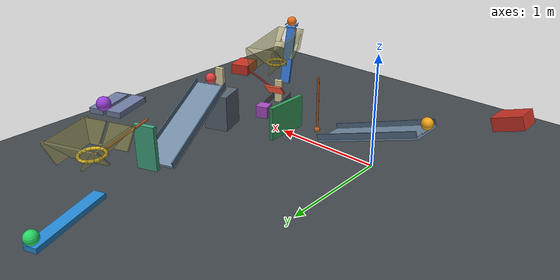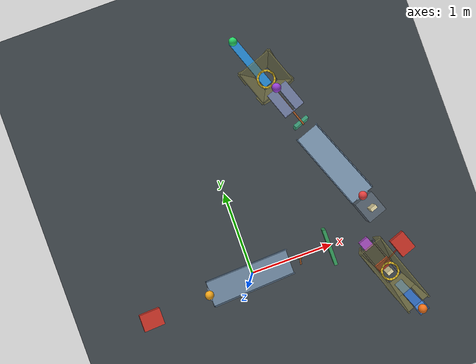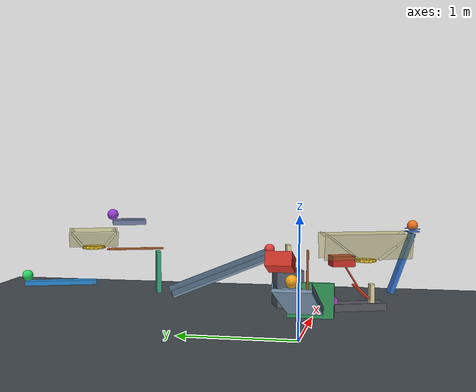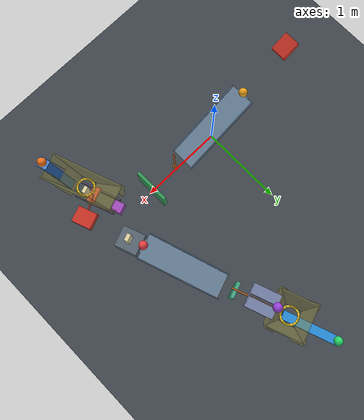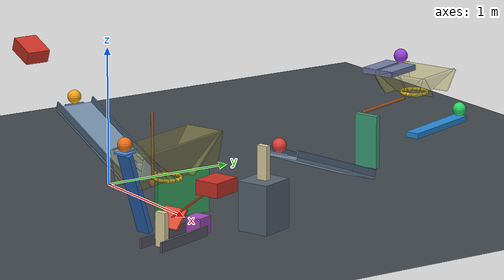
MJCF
<mujoco model="spring_started_chain">
  <compiler angle="degree" autolimits="true" inertiafromgeom="true"/>
  <option timestep="0.002" gravity="0 0 -9.81" integrator="implicitfast" solver="Newton" iterations="100" cone="elliptic" impratio="3" o_solref="0.006 0.6901" o_solimp="0.95 0.99 0.001" o_friction="0.68 0.68 0.005 0.002 0.002">
    <flag override="enable"/>
  </option>
  <size njmax="3000" nconmax="1000"/>
  <visual>
    <global azimuth="135" elevation="-25"/>
    <map znear="0.01" zfar="30"/>
  </visual>

  <!-- This revision addresses door1's collision with the block guide; it has not been rerun. -->
  <!-- Block guides now begin 0.02 m forward of block1's initial center, outside the door's swept volume. -->
  <!-- Block1 and the downstream assembly move together by 0.006 m toward the incoming impact direction. -->
  <!-- All bodies start with zero generalized velocity. -->
  <!-- Powered displacement assistance supplements cart1's spring; these are scene-internal actuators. -->
  <!-- Contact damping ratio 0.6901 approximates restitution 0.05. -->
  <!-- Non-floor contacts use condim=3; floor contacts add rolling resistance for settling. -->

  <worldbody>
    <light name="key_light" pos="-2 -3 5" dir="0.3 0.4 -1" diffuse="0.8 0.8 0.8"/>
    <light name="fill_light" pos="3 3 4" dir="-0.3 -0.3 -1" diffuse="0.5 0.5 0.5"/>
    <camera name="overview" pos="5 -6 4.5" xyaxes="0.768 0.640 0 -0.288 0.346 0.893"/>
    <geom name="floor" type="plane" pos="0 0 0" size="5 5 0.1" condim="6" friction="0.68 0.005 0.002" rgba="0.25 0.28 0.30 1"/>

    <!-- Compression is springref minus initial q: 0.20 m. -->
    <!-- The cart front reaches the stationary ball after 0.50 m of axial travel. -->
    <body name="cart1" pos="-1.090043 0 0.775754" quat="0.984807753 0 0.173648178 0">
      <joint name="cart1_slide" type="slide" axis="1 0 0" range="0 0.515" damping="0.20" stiffness="18" springref="0.20" solreflimit="0.006 1" solimplimit="0.99 0.999 0.001"/>
      <geom name="cart1_box" type="box" size="0.11 0.09 0.05" mass="0.50" condim="3" friction="0.68 0.005 0.002" rgba="0.80 0.20 0.15 1"/>
    </body>

    <body name="ball1" pos="-0.469846 0 0.550020">
      <freejoint name="ball1_free"/>
      <geom name="ball1_sphere" type="sphere" size="0.05" mass="0.20" condim="3" friction="0.68 0.005 0.002" rgba="0.95 0.65 0.10 1"/>
    </body>

    <!-- Ramp surface: 1.00 by 0.30 m, 20 degrees, low end at z=0.15. -->
    <!-- The short starting ledge ends 3 mm downstream of the initial ball center. -->
    <body name="ramp1" pos="0 0 0.321010" quat="0.984807753 0 0.173648178 0">
      <geom name="ramp1_surface" type="box" pos="0 0 -0.0125" size="0.50 0.15 0.0125" condim="3" friction="0.68 0.005 0.002" rgba="0.45 0.55 0.65 1"/>
      <geom name="ramp1_start_pad" type="box" pos="-0.503845 0 0.001793" quat="0.984807753 0 -0.173648178 0" size="0.006 0.075 0.005" condim="3" friction="0.68 0.005 0.002" rgba="0.55 0.65 0.75 1"/>
      <geom name="ramp1_rail_left" type="box" pos="0 0.145 0.02" size="0.50 0.005 0.025" condim="3" friction="0.68 0.005 0.002" rgba="0.35 0.45 0.55 1"/>
      <geom name="ramp1_rail_right" type="box" pos="0 -0.145 0.02" size="0.50 0.005 0.025" condim="3" friction="0.68 0.005 0.002" rgba="0.35 0.45 0.55 1"/>
    </body>

    <body name="pendulum1" pos="0.594846 0 0.65">
      <joint name="pendulum1_hinge" type="hinge" axis="0 -1 0" range="0 40" damping="0.04" solreflimit="0.006 1" solimplimit="0.99 0.999 0.001"/>
      <geom name="pendulum1_rod" type="capsule" fromto="0 0 0 0 0 -0.50" size="0.01" mass="0.32" condim="3" friction="0.68 0.005 0.002" rgba="0.65 0.35 0.15 1"/>
      <geom name="pendulum1_bob" type="sphere" pos="0 0 -0.50" size="0.027" mass="0.03" condim="3" friction="0.68 0.005 0.002" rgba="0.75 0.40 0.15 1"/>
    </body>

    <!-- The panel has 2 mm floor clearance. -->
    <body name="door1" pos="0.961240 -0.20 0.162">
      <joint name="door1_hinge" type="hinge" axis="0 0 -1" range="0 70" damping="0.04" solreflimit="0.006 1" solimplimit="0.99 0.999 0.001"/>
      <geom name="door1_panel" type="box" pos="0 0.21 0" size="0.02 0.21 0.16" mass="0.45" condim="3" friction="0.68 0.005 0.002" rgba="0.20 0.60 0.35 1"/>
    </body>

    <body name="block1" pos="1.381563 -0.126829 0.06" quat="0.819152044 0 0 -0.573576436">
      <freejoint name="block1_free"/>
      <geom name="block1_cube" type="box" size="0.06 0.06 0.06" mass="0.35" condim="3" friction="0.68 0.005 0.002" rgba="0.65 0.30 0.75 1"/>
    </body>

    <!-- Rail axial extent is now [0.02, 0.52], instead of [-0.08, 0.52]. -->
    <body name="block1_guide" pos="1.381563 -0.126829 0" quat="0.819152044 0 0 -0.573576436">
      <geom name="block1_guide_left" type="box" pos="0.27 0.086 0.035" size="0.25 0.008 0.035" condim="3" friction="0.68 0.005 0.002" rgba="0.35 0.35 0.40 1"/>
      <geom name="block1_guide_right" type="box" pos="0.27 -0.086 0.035" size="0.25 0.008 0.035" condim="3" friction="0.68 0.005 0.002" rgba="0.35 0.35 0.40 1"/>
    </body>

    <!-- Initial block-to-domino face clearance remains 0.32 m. -->
    <body name="domino1" pos="1.518371 -0.502706 0.12" quat="0.819152044 0 0 -0.573576436">
      <freejoint name="domino1_free"/>
      <geom name="domino1_box" type="box" size="0.02 0.04 0.12" mass="0.25" condim="3" friction="0.68 0.005 0.002" rgba="0.90 0.85 0.65 1"/>
    </body>

    <!-- Lever1's left end is 0.18 m beyond domino1. Beam and cup together weigh 0.50 kg. -->
    <body name="lever1" pos="1.615028 -0.768268 0.431908" quat="0.671010072 -0.328989928 -0.469846310 -0.469846310">
      <joint name="lever1_hinge" type="hinge" axis="0 -1 0" range="0 45" damping="0.04" solreflimit="0.006 1" solimplimit="0.99 0.999 0.001"/>
      <geom name="lever1_beam" type="box" size="0.30 0.05 0.02" mass="0.479" condim="3" friction="0.68 0.005 0.002" rgba="0.20 0.45 0.80 1"/>
      <geom name="lever1_cup_floor" type="box" pos="0.314095 0 0.005130" quat="0.819152044 0 0.573576436 0" size="0.055 0.05 0.005" mass="0.020" condim="3" friction="0.68 0.005 0.002" rgba="0.30 0.55 0.90 1"/>
      <geom name="lever1_cup_rail_left" type="capsule" fromto="0.320487 0.055 0.060666 0.354689 0.055 -0.033304" size="0.005" mass="0.0005" condim="3" friction="0.68 0.005 0.002" rgba="0.30 0.55 0.90 1"/>
      <geom name="lever1_cup_rail_right" type="capsule" fromto="0.320487 -0.055 0.060666 0.354689 -0.055 -0.033304" size="0.005" mass="0.0005" condim="3" friction="0.68 0.005 0.002" rgba="0.30 0.55 0.90 1"/>
    </body>

    <body name="ball2" pos="1.650121 -0.864686 0.783816">
      <freejoint name="ball2_free"/>
      <geom name="ball2_sphere" type="sphere" size="0.05" mass="0.20" condim="3" friction="0.68 0.005 0.002" rgba="0.95 0.45 0.10 1"/>
    </body>

    <!-- Horizontal ring, 0.16 m inscribed clear diameter, 0.32 m below ball2's initial center. -->
    <body name="ring1" pos="1.496212 -0.441825 0.463816" quat="0.573576436 0 0 0.819152044">
      <geom name="ring1_segment_00" type="capsule" fromto="0.093802 0 0 0.086664 0.035897 0" size="0.012" condim="3" friction="0.68 0.005 0.002" rgba="0.90 0.75 0.15 1"/>
      <geom name="ring1_segment_01" type="capsule" fromto="0.086664 0.035897 0 0.066330 0.066330 0" size="0.012" condim="3" friction="0.68 0.005 0.002" rgba="0.90 0.75 0.15 1"/>
      <geom name="ring1_segment_02" type="capsule" fromto="0.066330 0.066330 0 0.035897 0.086664 0" size="0.012" condim="3" friction="0.68 0.005 0.002" rgba="0.90 0.75 0.15 1"/>
      <geom name="ring1_segment_03" type="capsule" fromto="0.035897 0.086664 0 0 0.093802 0" size="0.012" condim="3" friction="0.68 0.005 0.002" rgba="0.90 0.75 0.15 1"/>
      <geom name="ring1_segment_04" type="capsule" fromto="0 0.093802 0 -0.035897 0.086664 0" size="0.012" condim="3" friction="0.68 0.005 0.002" rgba="0.90 0.75 0.15 1"/>
      <geom name="ring1_segment_05" type="capsule" fromto="-0.035897 0.086664 0 -0.066330 0.066330 0" size="0.012" condim="3" friction="0.68 0.005 0.002" rgba="0.90 0.75 0.15 1"/>
      <geom name="ring1_segment_06" type="capsule" fromto="-0.066330 0.066330 0 -0.086664 0.035897 0" size="0.012" condim="3" friction="0.68 0.005 0.002" rgba="0.90 0.75 0.15 1"/>
      <geom name="ring1_segment_07" type="capsule" fromto="-0.086664 0.035897 0 -0.093802 0 0" size="0.012" condim="3" friction="0.68 0.005 0.002" rgba="0.90 0.75 0.15 1"/>
      <geom name="ring1_segment_08" type="capsule" fromto="-0.093802 0 0 -0.086664 -0.035897 0" size="0.012" condim="3" friction="0.68 0.005 0.002" rgba="0.90 0.75 0.15 1"/>
      <geom name="ring1_segment_09" type="capsule" fromto="-0.086664 -0.035897 0 -0.066330 -0.066330 0" size="0.012" condim="3" friction="0.68 0.005 0.002" rgba="0.90 0.75 0.15 1"/>
      <geom name="ring1_segment_10" type="capsule" fromto="-0.066330 -0.066330 0 -0.035897 -0.086664 0" size="0.012" condim="3" friction="0.68 0.005 0.002" rgba="0.90 0.75 0.15 1"/>
      <geom name="ring1_segment_11" type="capsule" fromto="-0.035897 -0.086664 0 0 -0.093802 0" size="0.012" condim="3" friction="0.68 0.005 0.002" rgba="0.90 0.75 0.15 1"/>
      <geom name="ring1_segment_12" type="capsule" fromto="0 -0.093802 0 0.035897 -0.086664 0" size="0.012" condim="3" friction="0.68 0.005 0.002" rgba="0.90 0.75 0.15 1"/>
      <geom name="ring1_segment_13" type="capsule" fromto="0.035897 -0.086664 0 0.066330 -0.066330 0" size="0.012" condim="3" friction="0.68 0.005 0.002" rgba="0.90 0.75 0.15 1"/>
      <geom name="ring1_segment_14" type="capsule" fromto="0.066330 -0.066330 0 0.086664 -0.035897 0" size="0.012" condim="3" friction="0.68 0.005 0.002" rgba="0.90 0.75 0.15 1"/>
      <geom name="ring1_segment_15" type="capsule" fromto="0.086664 -0.035897 0 0.093802 0 0" size="0.012" condim="3" friction="0.68 0.005 0.002" rgba="0.90 0.75 0.15 1"/>
    </body>

    <body name="ring1_guide" pos="1.496212 -0.441825 0.463816" quat="0.573576436 0 0 0.819152044">
      <geom name="ring1_guide_front" type="box" pos="0.2475 0 0.138" euler="0 52.25 0" size="0.008 0.15 0.19282" condim="3" friction="0.68 0.005 0.002" rgba="0.65 0.60 0.25 0.45"/>
      <geom name="ring1_guide_back_lower" type="box" pos="-0.1725 0 0.08" euler="0 -52.25 0" size="0.008 0.15 0.09802" condim="3" friction="0.68 0.005 0.002" rgba="0.65 0.60 0.25 0.45"/>
      <geom name="ring1_guide_back_upper_left" type="box" pos="-0.325 0.10 0.198" euler="0 -52.25 0" size="0.008 0.04 0.09482" condim="3" friction="0.68 0.005 0.002" rgba="0.65 0.60 0.25 0.45"/>
      <geom name="ring1_guide_back_upper_right" type="box" pos="-0.325 -0.10 0.198" euler="0 -52.25 0" size="0.008 0.04 0.09482" condim="3" friction="0.68 0.005 0.002" rgba="0.65 0.60 0.25 0.45"/>
      <geom name="ring1_guide_left" type="box" pos="0 0.1175 0.138" euler="-10.8 0 0" size="0.42 0.007 0.12012" condim="3" friction="0.68 0.005 0.002" rgba="0.65 0.60 0.25 0.45"/>
      <geom name="ring1_guide_right" type="box" pos="0 -0.1175 0.138" euler="10.8 0 0" size="0.42 0.007 0.12012" condim="3" friction="0.68 0.005 0.002" rgba="0.65 0.60 0.25 0.45"/>
    </body>

    <!-- Main cart, coupling arm, and paddle together have mass 0.50 kg. -->
    <!-- Nominal ball-center height at paddle contact is ring1 height minus 0.25 m. -->
    <body name="cart2" pos="1.729895 -0.206722 0.425" quat="0.573576436 0 0 0.819152044">
      <joint name="cart2_slide" type="slide" axis="1 0 0" range="0 0.405" damping="0.20" solreflimit="0.006 1" solimplimit="0.99 0.999 0.001"/>
      <geom name="cart2_box" type="box" size="0.11 0.09 0.05" mass="0.470" condim="3" friction="0.68 0.005 0.002" rgba="0.80 0.20 0.15 1"/>
      <geom name="cart2_coupling_arm" type="capsule" fromto="0 0 0 -0.10 0.30 -0.252197" size="0.008" mass="0.015" condim="3" friction="0.68 0.005 0.002" rgba="0.65 0.20 0.15 1"/>
      <geom name="cart2_catch_paddle" type="box" pos="-0.10 0.30 -0.252197" quat="0.923879533 0 -0.382683432 0" size="0.08 0.09 0.008" mass="0.015" condim="3" friction="0.68 0.005 0.002" rgba="0.90 0.30 0.20 1"/>
    </body>

    <body name="domino2_support" pos="1.548624 0.291315 0.175" quat="0.573576436 0 0 0.819152044">
      <geom name="domino2_support_plinth" type="box" size="0.13 0.12 0.175" condim="3" friction="0.68 0.005 0.002" rgba="0.35 0.40 0.45 1"/>
    </body>

    <!-- Cart2 reaches domino2 after 0.40 m of travel. -->
    <body name="domino2" pos="1.548624 0.291315 0.47" quat="0.573576436 0 0 0.819152044">
      <freejoint name="domino2_free"/>
      <geom name="domino2_box" type="box" size="0.02 0.04 0.12" mass="0.25" condim="3" friction="0.68 0.005 0.002" rgba="0.90 0.85 0.65 1"/>
    </body>

    <body name="ball3" pos="1.487060 0.460460 0.550020">
      <freejoint name="ball3_free"/>
      <geom name="ball3_sphere" type="sphere" size="0.05" mass="0.20" condim="3" friction="0.68 0.005 0.002" rgba="0.90 0.25 0.25 1"/>
    </body>

    <body name="ramp2" pos="1.326364 0.901971 0.321010" quat="0.564862521 -0.142244260 0.099600503 0.806707284">
      <geom name="ramp2_surface" type="box" pos="0 0 -0.0125" size="0.50 0.15 0.0125" condim="3" friction="0.68 0.005 0.002" rgba="0.45 0.55 0.65 1"/>
      <geom name="ramp2_start_pad" type="box" pos="-0.503845 0 0.001793" quat="0.984807753 0 -0.173648178 0" size="0.006 0.075 0.005" condim="3" friction="0.68 0.005 0.002" rgba="0.55 0.65 0.75 1"/>
      <geom name="ramp2_rail_left" type="box" pos="0 0.145 0.02" size="0.50 0.005 0.025" condim="3" friction="0.68 0.005 0.002" rgba="0.35 0.45 0.55 1"/>
      <geom name="ramp2_rail_right" type="box" pos="0 -0.145 0.02" size="0.50 0.005 0.025" condim="3" friction="0.68 0.005 0.002" rgba="0.35 0.45 0.55 1"/>
    </body>

    <body name="flap1" pos="1.124624 1.456245 0.55" quat="0.573576436 0 0 0.819152044">
      <joint name="flap1_hinge" type="hinge" axis="0 -1 0" range="0 60" damping="0.04" solreflimit="0.006 1" solimplimit="0.99 0.999 0.001"/>
      <geom name="flap1_panel" type="box" pos="0 0 -0.19" size="0.02 0.09 0.19" mass="0.28" condim="3" friction="0.68 0.005 0.002" rgba="0.25 0.65 0.50 1"/>
    </body>

    <!-- The balancing torque is slightly below gravity, holding pendulum2 at its lower stop until struck. -->
    <body name="pendulum2" pos="1.138305 1.418658 0.577321" quat="0.573576436 0 0 0.819152044">
      <joint name="pendulum2_hinge" type="hinge" axis="0 -1 0" range="0 38" damping="0.04" solreflimit="0.006 1" solimplimit="0.99 0.999 0.001"/>
      <geom name="pendulum2_rod" type="capsule" fromto="0 0 0 0.50 0 0" size="0.0105" mass="0.32" condim="3" friction="0.68 0.005 0.002" rgba="0.65 0.35 0.15 1"/>
      <geom name="pendulum2_bob" type="sphere" pos="0.50 0 0" size="0.012" mass="0.03" condim="3" friction="0.68 0.005 0.002" rgba="0.75 0.40 0.15 1"/>
    </body>

    <!-- Overall shelf dimensions are 0.30 by 0.25 by 0.04 m, with top z=0.85. -->
    <!-- Its 0.03 m central slot admits pendulum2; ball4 bridges the support strips. -->
    <body name="shelf1" pos="1.033476 1.706673 0.83" quat="0.573576436 0 0 0.819152044">
      <geom name="shelf1_left_strip" type="box" pos="0 0.07 0" size="0.15 0.055 0.02" condim="3" friction="0.68 0.005 0.002" rgba="0.45 0.50 0.65 1"/>
      <geom name="shelf1_right_strip" type="box" pos="0 -0.07 0" size="0.15 0.055 0.02" condim="3" friction="0.68 0.005 0.002" rgba="0.45 0.50 0.65 1"/>
      <geom name="shelf1_back_bridge" type="box" pos="-0.145 0 0" size="0.005 0.125 0.02" condim="3" friction="0.68 0.005 0.002" rgba="0.45 0.50 0.65 1"/>
    </body>

    <body name="ball4" pos="0.983028 1.845278 0.897697">
      <freejoint name="ball4_free"/>
      <geom name="ball4_sphere" type="sphere" size="0.05" mass="0.20" condim="3" friction="0.68 0.005 0.002" rgba="0.60 0.25 0.85 1"/>
    </body>

    <!-- Horizontal ring, 0.16 m inscribed clear diameter, 0.30 m below ball4's initial center. -->
    <body name="ring2" pos="0.921464 2.014423 0.597697" quat="0.573576436 0 0 0.819152044">
      <geom name="ring2_segment_00" type="capsule" fromto="0.093802 0 0 0.086664 0.035897 0" size="0.012" condim="3" friction="0.68 0.005 0.002" rgba="0.90 0.75 0.15 1"/>
      <geom name="ring2_segment_01" type="capsule" fromto="0.086664 0.035897 0 0.066330 0.066330 0" size="0.012" condim="3" friction="0.68 0.005 0.002" rgba="0.90 0.75 0.15 1"/>
      <geom name="ring2_segment_02" type="capsule" fromto="0.066330 0.066330 0 0.035897 0.086664 0" size="0.012" condim="3" friction="0.68 0.005 0.002" rgba="0.90 0.75 0.15 1"/>
      <geom name="ring2_segment_03" type="capsule" fromto="0.035897 0.086664 0 0 0.093802 0" size="0.012" condim="3" friction="0.68 0.005 0.002" rgba="0.90 0.75 0.15 1"/>
      <geom name="ring2_segment_04" type="capsule" fromto="0 0.093802 0 -0.035897 0.086664 0" size="0.012" condim="3" friction="0.68 0.005 0.002" rgba="0.90 0.75 0.15 1"/>
      <geom name="ring2_segment_05" type="capsule" fromto="-0.035897 0.086664 0 -0.066330 0.066330 0" size="0.012" condim="3" friction="0.68 0.005 0.002" rgba="0.90 0.75 0.15 1"/>
      <geom name="ring2_segment_06" type="capsule" fromto="-0.066330 0.066330 0 -0.086664 0.035897 0" size="0.012" condim="3" friction="0.68 0.005 0.002" rgba="0.90 0.75 0.15 1"/>
      <geom name="ring2_segment_07" type="capsule" fromto="-0.086664 0.035897 0 -0.093802 0 0" size="0.012" condim="3" friction="0.68 0.005 0.002" rgba="0.90 0.75 0.15 1"/>
      <geom name="ring2_segment_08" type="capsule" fromto="-0.093802 0 0 -0.086664 -0.035897 0" size="0.012" condim="3" friction="0.68 0.005 0.002" rgba="0.90 0.75 0.15 1"/>
      <geom name="ring2_segment_09" type="capsule" fromto="-0.086664 -0.035897 0 -0.066330 -0.066330 0" size="0.012" condim="3" friction="0.68 0.005 0.002" rgba="0.90 0.75 0.15 1"/>
      <geom name="ring2_segment_10" type="capsule" fromto="-0.066330 -0.066330 0 -0.035897 -0.086664 0" size="0.012" condim="3" friction="0.68 0.005 0.002" rgba="0.90 0.75 0.15 1"/>
      <geom name="ring2_segment_11" type="capsule" fromto="-0.035897 -0.086664 0 0 -0.093802 0" size="0.012" condim="3" friction="0.68 0.005 0.002" rgba="0.90 0.75 0.15 1"/>
      <geom name="ring2_segment_12" type="capsule" fromto="0 -0.093802 0 0.035897 -0.086664 0" size="0.012" condim="3" friction="0.68 0.005 0.002" rgba="0.90 0.75 0.15 1"/>
      <geom name="ring2_segment_13" type="capsule" fromto="0.035897 -0.086664 0 0.066330 -0.066330 0" size="0.012" condim="3" friction="0.68 0.005 0.002" rgba="0.90 0.75 0.15 1"/>
      <geom name="ring2_segment_14" type="capsule" fromto="0.066330 -0.066330 0 0.086664 -0.035897 0" size="0.012" condim="3" friction="0.68 0.005 0.002" rgba="0.90 0.75 0.15 1"/>
      <geom name="ring2_segment_15" type="capsule" fromto="0.086664 -0.035897 0 0.093802 0 0" size="0.012" condim="3" friction="0.68 0.005 0.002" rgba="0.90 0.75 0.15 1"/>
    </body>

    <!-- The rear guide's 0.03 m slot clears pendulum2's complete swing. -->
    <body name="ring2_guide" pos="0.921464 2.014423 0.597697" quat="0.573576436 0 0 0.819152044">
      <geom name="ring2_guide_front" type="box" pos="0.1475 0 0.0875" euler="0 37.875 0" size="0.008 0.22 0.08552" condim="3" friction="0.68 0.005 0.002" rgba="0.65 0.60 0.25 0.45"/>
      <geom name="ring2_guide_back_left" type="box" pos="-0.1475 0.1175 0.0875" euler="0 -37.875 0" size="0.008 0.1025 0.08552" condim="3" friction="0.68 0.005 0.002" rgba="0.65 0.60 0.25 0.45"/>
      <geom name="ring2_guide_back_right" type="box" pos="-0.1475 -0.1175 0.0875" euler="0 -37.875 0" size="0.008 0.1025 0.08552" condim="3" friction="0.68 0.005 0.002" rgba="0.65 0.60 0.25 0.45"/>
      <geom name="ring2_guide_back_lower" type="box" pos="-0.1005 0 0.02715" euler="0 -37.875 0" size="0.008 0.015 0.009021" condim="3" friction="0.68 0.005 0.002" rgba="0.65 0.60 0.25 0.45"/>
      <geom name="ring2_guide_left" type="box" pos="0 0.1475 0.0875" euler="-37.875 0 0" size="0.22 0.008 0.08552" condim="3" friction="0.68 0.005 0.002" rgba="0.65 0.60 0.25 0.45"/>
      <geom name="ring2_guide_right" type="box" pos="0 -0.1475 0.0875" euler="37.875 0 0" size="0.22 0.008 0.08552" condim="3" friction="0.68 0.005 0.002" rgba="0.65 0.60 0.25 0.45"/>
    </body>

    <!-- Ball4's nominal center at beam contact is another 0.25 m below ring2. -->
    <body name="seesaw1" pos="0.817148 2.301029 0.277697" quat="0.573576436 0 0 0.819152044">
      <joint name="seesaw1_hinge" type="hinge" axis="0 -1 0" range="0 42" damping="0.04" solreflimit="0.006 1" solimplimit="0.99 0.999 0.001"/>
      <geom name="seesaw1_beam" type="box" size="0.325 0.05 0.02" mass="0.55" condim="3" friction="0.68 0.005 0.002" rgba="0.15 0.55 0.85 1"/>
    </body>

    <!-- Initial supporting contact is intentional: seesaw1 carries ball5 before launch. -->
    <body name="ball5" pos="0.714542 2.582937 0.347697">
      <freejoint name="ball5_free"/>
      <geom name="ball5_sphere" type="sphere" size="0.05" mass="0.20" condim="3" friction="0.68 0.005 0.002" rgba="0.15 0.85 0.40 1"/>
    </body>
  </worldbody>

  <!-- Fixed zero controls; position bias amplifies displacement after physical contact. -->
  <actuator>
    <general name="pendulum1_assist" joint="pendulum1_hinge" gainprm="0" biastype="affine" biasprm="0 1.5 0"/>
    <general name="door1_assist" joint="door1_hinge" gainprm="0" biastype="affine" biasprm="0 6 0"/>
    <general name="lever1_assist" joint="lever1_hinge" gainprm="0" biastype="affine" biasprm="0 3 0"/>
    <general name="cart2_assist" joint="cart2_slide" gainprm="0" biastype="affine" biasprm="0 5 0"/>
    <general name="flap1_assist" joint="flap1_hinge" gainprm="0" biastype="affine" biasprm="0 2 0"/>
    <general name="pendulum2_assist" joint="pendulum2_hinge" gainprm="0" biastype="affine" biasprm="0.93190 0.6 0"/>
    <general name="seesaw1_assist" joint="seesaw1_hinge" gainprm="0" biastype="affine" biasprm="0 2 0"/>
  </actuator>

  <keyframe>
    <key name="start" time="0" ctrl="0 0 0 0 0 0 0"/>
  </keyframe>
</mujoco>
